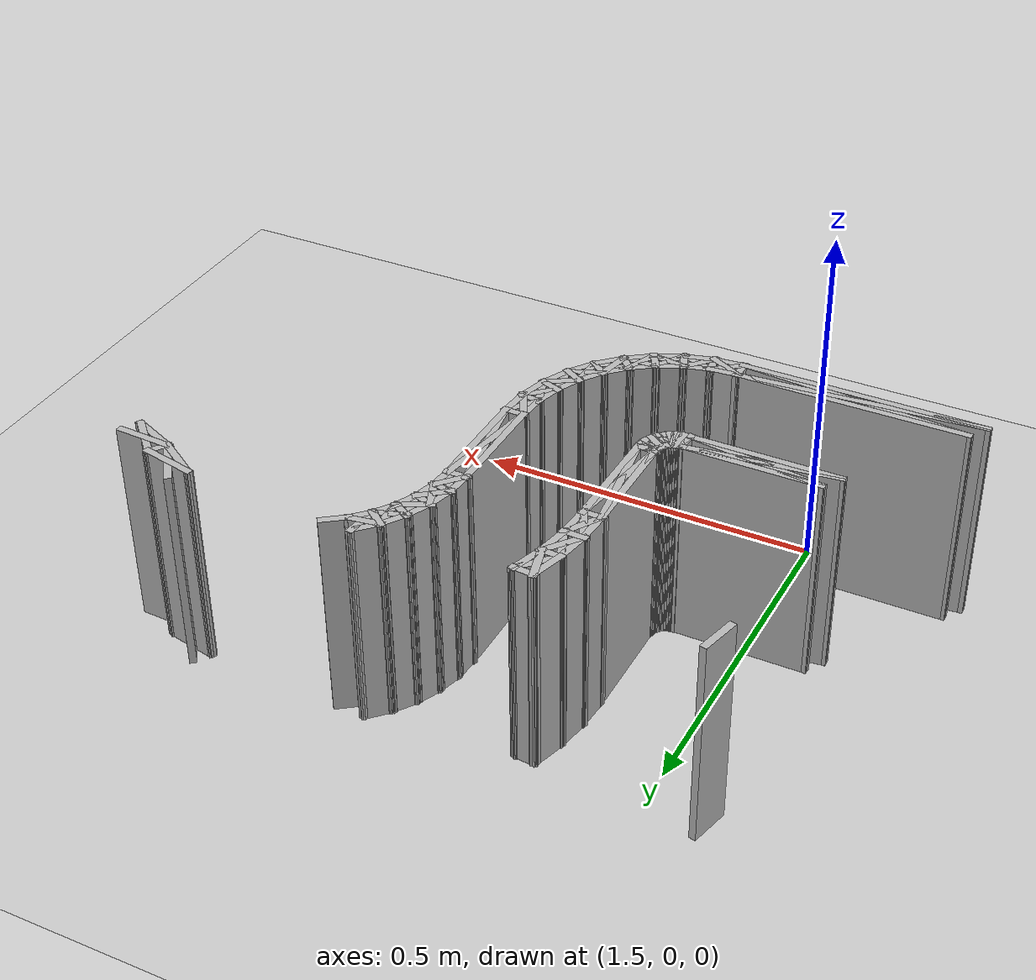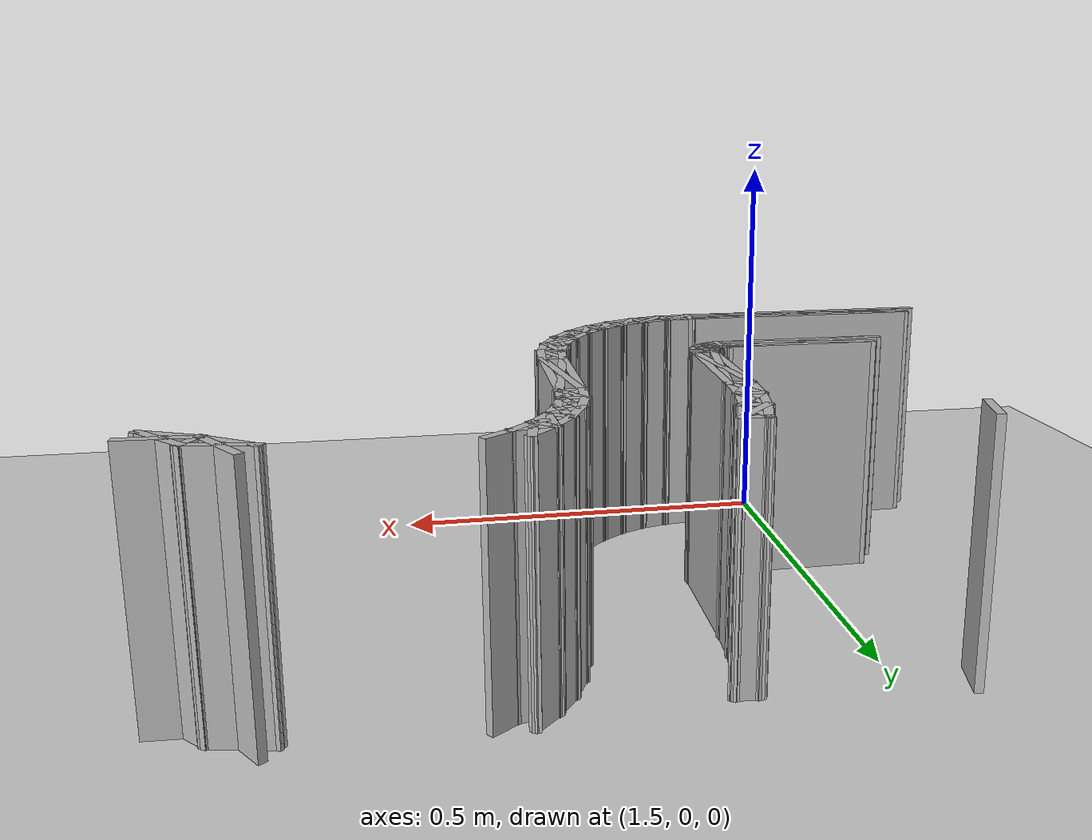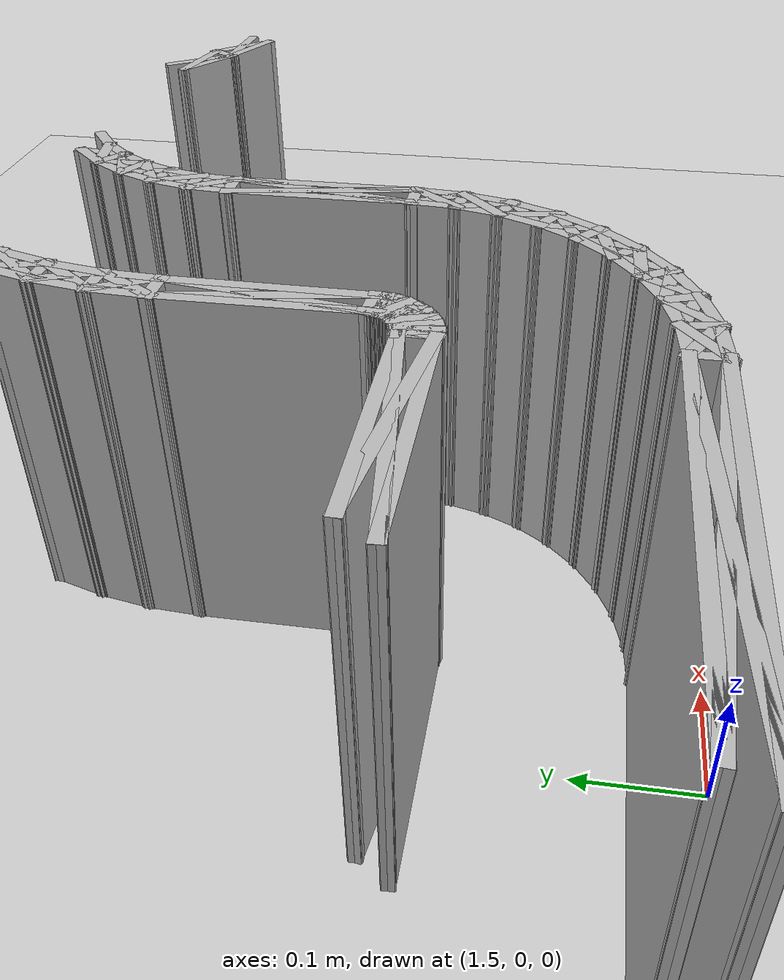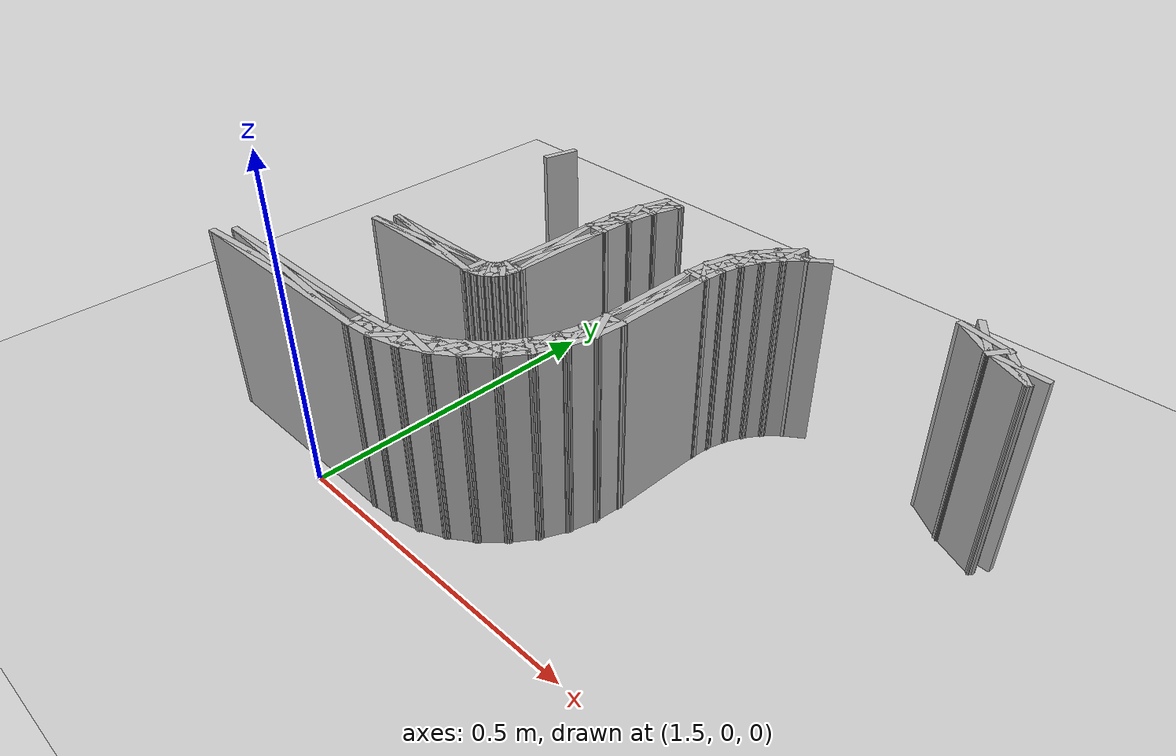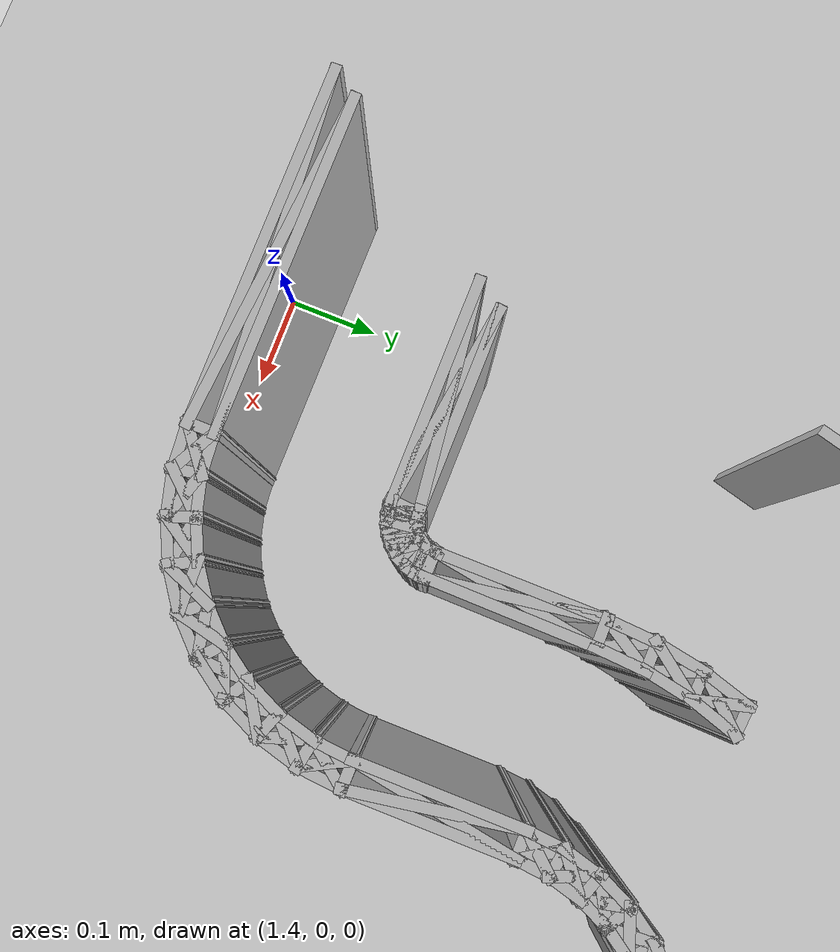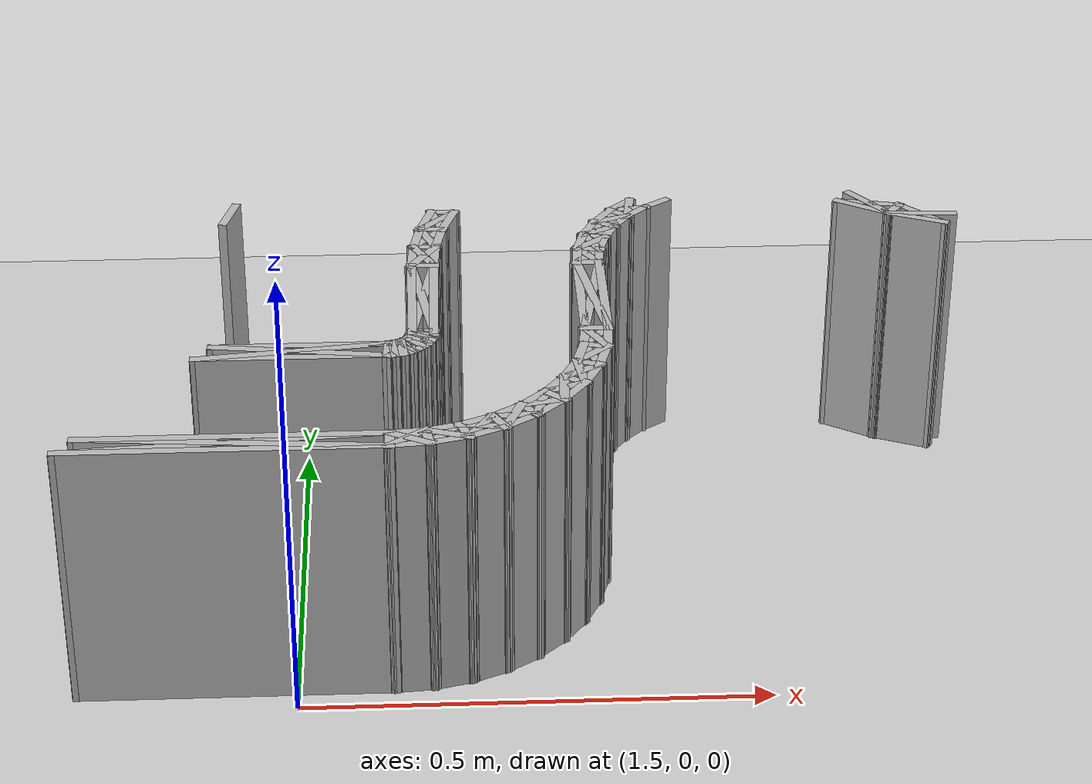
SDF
<sdf version="1.8">
 <world name="rosy_road">
  <model name="ground_plane">
   <link name="l">
    <visual name="v"><geometry><plane><normal>0 0 1</normal><size>4 2</size></plane></geometry></visual>
    <collision name="v"><geometry><plane><normal>0 0 1</normal><size>4 2</size></plane></geometry></collision>
   </link>
  </model>
  <model name="walls">
   <static>true</static>
   <link name="wall_112">
    <pose>1.4449 0.0400 0.150 0 0 -0.0789</pose>
    <visual name="v"><geometry><box><size>0.3280 0.0100 0.300</size></box></geometry></visual>
    <collision name="c"><geometry><box><size>0.3280 0.0100 0.300</size></box></geometry></collision>
   </link>
   <link name="wall_113">
    <pose>1.4362 0.0276 0.150 0 0 3.1416</pose>
    <visual name="v"><geometry><box><size>0.3444 0.0100 0.300</size></box></geometry></visual>
    <collision name="c"><geometry><box><size>0.3444 0.0100 0.300</size></box></geometry></collision>
   </link>
   <link name="wall_114">
    <pose>1.4362 0.0400 0.150 0 0 0.0748</pose>
    <visual name="v"><geometry><box><size>0.3453 0.0100 0.300</size></box></geometry></visual>
    <collision name="c"><geometry><box><size>0.3453 0.0100 0.300</size></box></geometry></collision>
   </link>
   <link name="wall_115">
    <pose>1.4449 0.0525 0.150 0 0 3.1416</pose>
    <visual name="v"><geometry><box><size>0.3270 0.0100 0.300</size></box></geometry></visual>
    <collision name="c"><geometry><box><size>0.3270 0.0100 0.300</size></box></geometry></collision>
   </link>
   <link name="wall_117">
    <pose>1.6024 0.0400 0.150 0 0 1.5708</pose>
    <visual name="v"><geometry><box><size>0.0369 0.0100 0.300</size></box></geometry></visual>
    <collision name="c"><geometry><box><size>0.0369 0.0100 0.300</size></box></geometry></collision>
   </link>
   <link name="wall_118">
    <pose>1.6207 0.0541 0.150 0 0 0.0874</pose>
    <visual name="v"><geometry><box><size>0.0486 0.0100 0.300</size></box></geometry></visual>
    <collision name="c"><geometry><box><size>0.0486 0.0100 0.300</size></box></geometry></collision>
   </link>
   <link name="wall_119">
    <pose>1.6207 0.0417 0.150 0 0 -2.4855</pose>
    <visual name="v"><geometry><box><size>0.0581 0.0100 0.300</size></box></geometry></visual>
    <collision name="c"><geometry><box><size>0.0581 0.0100 0.300</size></box></geometry></collision>
   </link>
   <link name="wall_120">
    <pose>1.6228 0.0294 0.150 0 0 0.0856</pose>
    <visual name="v"><geometry><box><size>0.0529 0.0100 0.300</size></box></geometry></visual>
    <collision name="c"><geometry><box><size>0.0529 0.0100 0.300</size></box></geometry></collision>
   </link>
   <link name="wall_121">
    <pose>1.6228 0.0418 0.150 0 0 2.6585</pose>
    <visual name="v"><geometry><box><size>0.0581 0.0100 0.300</size></box></geometry></visual>
    <collision name="c"><geometry><box><size>0.0581 0.0100 0.300</size></box></geometry></collision>
   </link>
   <link name="wall_127">
    <pose>1.6411 0.0434 0.150 0 0 -1.3977</pose>
    <visual name="v"><geometry><box><size>0.0370 0.0100 0.300</size></box></geometry></visual>
    <collision name="c"><geometry><box><size>0.0370 0.0100 0.300</size></box></geometry></collision>
   </link>
   <link name="wall_128">
    <pose>1.6587 0.0482 0.150 0 0 0.8330</pose>
    <visual name="v"><geometry><box><size>0.0581 0.0100 0.300</size></box></geometry></visual>
    <collision name="c"><geometry><box><size>0.0581 0.0100 0.300</size></box></geometry></collision>
   </link>
   <link name="wall_129">
    <pose>1.6566 0.0605 0.150 0 0 -2.8787</pose>
    <visual name="v"><geometry><box><size>0.0486 0.0100 0.300</size></box></geometry></visual>
    <collision name="c"><geometry><box><size>0.0486 0.0100 0.300</size></box></geometry></collision>
   </link>
   <link name="wall_130">
    <pose>1.6608 0.0487 0.150 0 0 -0.3087</pose>
    <visual name="v"><geometry><box><size>0.0581 0.0100 0.300</size></box></geometry></visual>
    <collision name="c"><geometry><box><size>0.0581 0.0100 0.300</size></box></geometry></collision>
   </link>
   <link name="wall_131">
    <pose>1.6630 0.0364 0.150 0 0 -2.8800</pose>
    <visual name="v"><geometry><box><size>0.0530 0.0100 0.300</size></box></geometry></visual>
    <collision name="c"><geometry><box><size>0.0530 0.0100 0.300</size></box></geometry></collision>
   </link>
   <link name="wall_137">
    <pose>1.6785 0.0535 0.150 0 0 -1.2200</pose>
    <visual name="v"><geometry><box><size>0.0370 0.0100 0.300</size></box></geometry></visual>
    <collision name="c"><geometry><box><size>0.0370 0.0100 0.300</size></box></geometry></collision>
   </link>
   <link name="wall_138">
    <pose>1.6951 0.0612 0.150 0 0 1.0081</pose>
    <visual name="v"><geometry><box><size>0.0581 0.0100 0.300</size></box></geometry></visual>
    <collision name="c"><geometry><box><size>0.0581 0.0100 0.300</size></box></geometry></collision>
   </link>
   <link name="wall_139">
    <pose>1.6908 0.0730 0.150 0 0 -2.7048</pose>
    <visual name="v"><geometry><box><size>0.0486 0.0100 0.300</size></box></geometry></visual>
    <collision name="c"><geometry><box><size>0.0486 0.0100 0.300</size></box></geometry></collision>
   </link>
   <link name="wall_140">
    <pose>1.6971 0.0621 0.150 0 0 -0.1348</pose>
    <visual name="v"><geometry><box><size>0.0581 0.0100 0.300</size></box></geometry></visual>
    <collision name="c"><geometry><box><size>0.0581 0.0100 0.300</size></box></geometry></collision>
   </link>
   <link name="wall_141">
    <pose>1.7013 0.0503 0.150 0 0 -2.7053</pose>
    <visual name="v"><geometry><box><size>0.0529 0.0100 0.300</size></box></geometry></visual>
    <collision name="c"><geometry><box><size>0.0529 0.0100 0.300</size></box></geometry></collision>
   </link>
   <link name="wall_147">
    <pose>1.7137 0.0698 0.150 0 0 -1.0482</pose>
    <visual name="v"><geometry><box><size>0.0370 0.0100 0.300</size></box></geometry></visual>
    <collision name="c"><geometry><box><size>0.0370 0.0100 0.300</size></box></geometry></collision>
   </link>
   <link name="wall_148">
    <pose>1.7287 0.0803 0.150 0 0 1.1818</pose>
    <visual name="v"><geometry><box><size>0.0581 0.0100 0.300</size></box></geometry></visual>
    <collision name="c"><geometry><box><size>0.0581 0.0100 0.300</size></box></geometry></collision>
   </link>
   <link name="wall_149">
    <pose>1.7224 0.0912 0.150 0 0 -2.5309</pose>
    <visual name="v"><geometry><box><size>0.0486 0.0100 0.300</size></box></geometry></visual>
    <collision name="c"><geometry><box><size>0.0486 0.0100 0.300</size></box></geometry></collision>
   </link>
   <link name="wall_150">
    <pose>1.7304 0.0816 0.150 0 0 0.0391</pose>
    <visual name="v"><geometry><box><size>0.0580 0.0100 0.300</size></box></geometry></visual>
    <collision name="c"><geometry><box><size>0.0580 0.0100 0.300</size></box></geometry></collision>
   </link>
   <link name="wall_151">
    <pose>1.7367 0.0707 0.150 0 0 -2.5299</pose>
    <visual name="v"><geometry><box><size>0.0529 0.0100 0.300</size></box></geometry></visual>
    <collision name="c"><geometry><box><size>0.0529 0.0100 0.300</size></box></geometry></collision>
   </link>
   <link name="wall_157">
    <pose>1.7454 0.0921 0.150 0 0 -0.8761</pose>
    <visual name="v"><geometry><box><size>0.0370 0.0100 0.300</size></box></geometry></visual>
    <collision name="c"><geometry><box><size>0.0370 0.0100 0.300</size></box></geometry></collision>
   </link>
   <link name="wall_158">
    <pose>1.7583 0.1050 0.150 0 0 1.3547</pose>
    <visual name="v"><geometry><box><size>0.0582 0.0100 0.300</size></box></geometry></visual>
    <collision name="c"><geometry><box><size>0.0582 0.0100 0.300</size></box></geometry></collision>
   </link>
   <link name="wall_159">
    <pose>1.7503 0.1147 0.150 0 0 -2.3562</pose>
    <visual name="v"><geometry><box><size>0.0486 0.0100 0.300</size></box></geometry></visual>
    <collision name="c"><geometry><box><size>0.0486 0.0100 0.300</size></box></geometry></collision>
   </link>
   <link name="wall_160">
    <pose>1.7599 0.1066 0.150 0 0 0.2144</pose>
    <visual name="v"><geometry><box><size>0.0581 0.0100 0.300</size></box></geometry></visual>
    <collision name="c"><geometry><box><size>0.0581 0.0100 0.300</size></box></geometry></collision>
   </link>
   <link name="wall_161">
    <pose>1.7679 0.0970 0.150 0 0 -2.3562</pose>
    <visual name="v"><geometry><box><size>0.0530 0.0100 0.300</size></box></geometry></visual>
    <collision name="c"><geometry><box><size>0.0530 0.0100 0.300</size></box></geometry></collision>
   </link>
   <link name="wall_167">
    <pose>1.7728 0.1196 0.150 0 0 -0.7004</pose>
    <visual name="v"><geometry><box><size>0.0370 0.0100 0.300</size></box></geometry></visual>
    <collision name="c"><geometry><box><size>0.0370 0.0100 0.300</size></box></geometry></collision>
   </link>
   <link name="wall_168">
    <pose>1.7833 0.1346 0.150 0 0 1.5296</pose>
    <visual name="v"><geometry><box><size>0.0581 0.0100 0.300</size></box></geometry></visual>
    <collision name="c"><geometry><box><size>0.0581 0.0100 0.300</size></box></geometry></collision>
   </link>
   <link name="wall_169">
    <pose>1.7738 0.1426 0.150 0 0 -2.1815</pose>
    <visual name="v"><geometry><box><size>0.0486 0.0100 0.300</size></box></geometry></visual>
    <collision name="c"><geometry><box><size>0.0486 0.0100 0.300</size></box></geometry></collision>
   </link>
   <link name="wall_170">
    <pose>1.7846 0.1363 0.150 0 0 0.3878</pose>
    <visual name="v"><geometry><box><size>0.0580 0.0100 0.300</size></box></geometry></visual>
    <collision name="c"><geometry><box><size>0.0580 0.0100 0.300</size></box></geometry></collision>
   </link>
   <link name="wall_171">
    <pose>1.7942 0.1283 0.150 0 0 -2.1825</pose>
    <visual name="v"><geometry><box><size>0.0529 0.0100 0.300</size></box></geometry></visual>
    <collision name="c"><geometry><box><size>0.0529 0.0100 0.300</size></box></geometry></collision>
   </link>
   <link name="wall_187">
    <pose>1.7920 0.1741 0.150 0 0 1.1353</pose>
    <visual name="v"><geometry><box><size>0.0485 0.0100 0.300</size></box></geometry></visual>
    <collision name="c"><geometry><box><size>0.0485 0.0100 0.300</size></box></geometry></collision>
   </link>
   <link name="wall_188">
    <pose>1.8028 0.1678 0.150 0 0 -1.4360</pose>
    <visual name="v"><geometry><box><size>0.0581 0.0100 0.300</size></box></geometry></visual>
    <collision name="c"><geometry><box><size>0.0581 0.0100 0.300</size></box></geometry></collision>
   </link>
   <link name="wall_189">
    <pose>1.7951 0.1513 0.150 0 0 2.6135</pose>
    <visual name="v"><geometry><box><size>0.0370 0.0100 0.300</size></box></geometry></visual>
    <collision name="c"><geometry><box><size>0.0370 0.0100 0.300</size></box></geometry></collision>
   </link>
   <link name="wall_190">
    <pose>1.8037 0.1699 0.150 0 0 0.5639</pose>
    <visual name="v"><geometry><box><size>0.0580 0.0100 0.300</size></box></geometry></visual>
    <collision name="c"><geometry><box><size>0.0580 0.0100 0.300</size></box></geometry></collision>
   </link>
   <link name="wall_191">
    <pose>1.8146 0.1636 0.150 0 0 -2.0061</pose>
    <visual name="v"><geometry><box><size>0.0530 0.0100 0.300</size></box></geometry></visual>
    <collision name="c"><geometry><box><size>0.0530 0.0100 0.300</size></box></geometry></collision>
   </link>
   <link name="wall_192">
    <pose>1.8045 0.2084 0.150 0 0 1.3086</pose>
    <visual name="v"><geometry><box><size>0.0487 0.0100 0.300</size></box></geometry></visual>
    <collision name="c"><geometry><box><size>0.0487 0.0100 0.300</size></box></geometry></collision>
   </link>
   <link name="wall_193">
    <pose>1.8162 0.2041 0.150 0 0 -1.2621</pose>
    <visual name="v"><geometry><box><size>0.0581 0.0100 0.300</size></box></geometry></visual>
    <collision name="c"><geometry><box><size>0.0581 0.0100 0.300</size></box></geometry></collision>
   </link>
   <link name="wall_194">
    <pose>1.8115 0.1864 0.150 0 0 2.7945</pose>
    <visual name="v"><geometry><box><size>0.0370 0.0100 0.300</size></box></geometry></visual>
    <collision name="c"><geometry><box><size>0.0370 0.0100 0.300</size></box></geometry></collision>
   </link>
   <link name="wall_195">
    <pose>1.8168 0.2062 0.150 0 0 0.7378</pose>
    <visual name="v"><geometry><box><size>0.0581 0.0100 0.300</size></box></geometry></visual>
    <collision name="c"><geometry><box><size>0.0581 0.0100 0.300</size></box></geometry></collision>
   </link>
   <link name="wall_196">
    <pose>1.8285 0.2019 0.150 0 0 -1.8330</pose>
    <visual name="v"><geometry><box><size>0.0529 0.0100 0.300</size></box></geometry></visual>
    <collision name="c"><geometry><box><size>0.0529 0.0100 0.300</size></box></geometry></collision>
   </link>
   <link name="wall_216">
    <pose>1.8108 0.2443 0.150 0 0 1.4831</pose>
    <visual name="v"><geometry><box><size>0.0485 0.0100 0.300</size></box></geometry></visual>
    <collision name="c"><geometry><box><size>0.0485 0.0100 0.300</size></box></geometry></collision>
   </link>
   <link name="wall_217">
    <pose>1.8231 0.2421 0.150 0 0 -1.0877</pose>
    <visual name="v"><geometry><box><size>0.0581 0.0100 0.300</size></box></geometry></visual>
    <collision name="c"><geometry><box><size>0.0581 0.0100 0.300</size></box></geometry></collision>
   </link>
   <link name="wall_218">
    <pose>1.8215 0.2239 0.150 0 0 2.9646</pose>
    <visual name="v"><geometry><box><size>0.0370 0.0100 0.300</size></box></geometry></visual>
    <collision name="c"><geometry><box><size>0.0370 0.0100 0.300</size></box></geometry></collision>
   </link>
   <link name="wall_219">
    <pose>1.8233 0.2443 0.150 0 0 0.9117</pose>
    <visual name="v"><geometry><box><size>0.0580 0.0100 0.300</size></box></geometry></visual>
    <collision name="c"><geometry><box><size>0.0580 0.0100 0.300</size></box></geometry></collision>
   </link>
   <link name="wall_220">
    <pose>1.8356 0.2421 0.150 0 0 -1.6588</pose>
    <visual name="v"><geometry><box><size>0.0530 0.0100 0.300</size></box></geometry></visual>
    <collision name="c"><geometry><box><size>0.0530 0.0100 0.300</size></box></geometry></collision>
   </link>
   <link name="wall_221">
    <pose>1.8124 0.3392 0.150 0 0 1.5708</pose>
    <visual name="v"><geometry><box><size>0.1654 0.0100 0.300</size></box></geometry></visual>
    <collision name="c"><geometry><box><size>0.1654 0.0100 0.300</size></box></geometry></collision>
   </link>
   <link name="wall_222">
    <pose>1.8249 0.3392 0.150 0 0 -1.4092</pose>
    <visual name="v"><geometry><box><size>0.1674 0.0100 0.300</size></box></geometry></visual>
    <collision name="c"><geometry><box><size>0.1674 0.0100 0.300</size></box></geometry></collision>
   </link>
   <link name="wall_223">
    <pose>1.8249 0.2625 0.150 0 0 3.1416</pose>
    <visual name="v"><geometry><box><size>0.0370 0.0100 0.300</size></box></geometry></visual>
    <collision name="c"><geometry><box><size>0.0370 0.0100 0.300</size></box></geometry></collision>
   </link>
   <link name="wall_224">
    <pose>1.8249 0.3392 0.150 0 0 1.4092</pose>
    <visual name="v"><geometry><box><size>0.1674 0.0100 0.300</size></box></geometry></visual>
    <collision name="c"><geometry><box><size>0.1674 0.0100 0.300</size></box></geometry></collision>
   </link>
   <link name="wall_225">
    <pose>1.8374 0.3392 0.150 0 0 -1.5708</pose>
    <visual name="v"><geometry><box><size>0.1654 0.0100 0.300</size></box></geometry></visual>
    <collision name="c"><geometry><box><size>0.1654 0.0100 0.300</size></box></geometry></collision>
   </link>
   <link name="wall_239">
    <pose>1.8139 0.4334 0.150 0 0 1.4850</pose>
    <visual name="v"><geometry><box><size>0.0470 0.0100 0.300</size></box></geometry></visual>
    <collision name="c"><geometry><box><size>0.0470 0.0100 0.300</size></box></geometry></collision>
   </link>
   <link name="wall_240">
    <pose>1.8264 0.4334 0.150 0 0 -1.0083</pose>
    <visual name="v"><geometry><box><size>0.0533 0.0100 0.300</size></box></geometry></visual>
    <collision name="c"><geometry><box><size>0.0533 0.0100 0.300</size></box></geometry></collision>
   </link>
   <link name="wall_241">
    <pose>1.8249 0.4159 0.150 0 0 3.1416</pose>
    <visual name="v"><geometry><box><size>0.0370 0.0100 0.300</size></box></geometry></visual>
    <collision name="c"><geometry><box><size>0.0370 0.0100 0.300</size></box></geometry></collision>
   </link>
   <link name="wall_242">
    <pose>1.8262 0.4312 0.150 0 0 0.8369</pose>
    <visual name="v"><geometry><box><size>0.0532 0.0100 0.300</size></box></geometry></visual>
    <collision name="c"><geometry><box><size>0.0532 0.0100 0.300</size></box></geometry></collision>
   </link>
   <link name="wall_243">
    <pose>1.8387 0.4312 0.150 0 0 -1.6556</pose>
    <visual name="v"><geometry><box><size>0.0427 0.0100 0.300</size></box></geometry></visual>
    <collision name="c"><geometry><box><size>0.0427 0.0100 0.300</size></box></geometry></collision>
   </link>
   <link name="wall_244">
    <pose>1.8198 0.4677 0.150 0 0 1.3141</pose>
    <visual name="v"><geometry><box><size>0.0470 0.0100 0.300</size></box></geometry></visual>
    <collision name="c"><geometry><box><size>0.0470 0.0100 0.300</size></box></geometry></collision>
   </link>
   <link name="wall_245">
    <pose>1.8322 0.4656 0.150 0 0 -1.1808</pose>
    <visual name="v"><geometry><box><size>0.0533 0.0100 0.300</size></box></geometry></visual>
    <collision name="c"><geometry><box><size>0.0533 0.0100 0.300</size></box></geometry></collision>
   </link>
   <link name="wall_246">
    <pose>1.8277 0.4486 0.150 0 0 2.9685</pose>
    <visual name="v"><geometry><box><size>0.0370 0.0100 0.300</size></box></geometry></visual>
    <collision name="c"><geometry><box><size>0.0370 0.0100 0.300</size></box></geometry></collision>
   </link>
   <link name="wall_247">
    <pose>1.8316 0.4636 0.150 0 0 0.6668</pose>
    <visual name="v"><geometry><box><size>0.0532 0.0100 0.300</size></box></geometry></visual>
    <collision name="c"><geometry><box><size>0.0532 0.0100 0.300</size></box></geometry></collision>
   </link>
   <link name="wall_248">
    <pose>1.8439 0.4614 0.150 0 0 -1.8268</pose>
    <visual name="v"><geometry><box><size>0.0428 0.0100 0.300</size></box></geometry></visual>
    <collision name="c"><geometry><box><size>0.0428 0.0100 0.300</size></box></geometry></collision>
   </link>
   <link name="wall_264">
    <pose>1.8316 0.5006 0.150 0 0 1.1416</pose>
    <visual name="v"><geometry><box><size>0.0471 0.0100 0.300</size></box></geometry></visual>
    <collision name="c"><geometry><box><size>0.0471 0.0100 0.300</size></box></geometry></collision>
   </link>
   <link name="wall_265">
    <pose>1.8433 0.4965 0.150 0 0 -1.3534</pose>
    <visual name="v"><geometry><box><size>0.0533 0.0100 0.300</size></box></geometry></visual>
    <collision name="c"><geometry><box><size>0.0533 0.0100 0.300</size></box></geometry></collision>
   </link>
   <link name="wall_266">
    <pose>1.8360 0.4805 0.150 0 0 2.7983</pose>
    <visual name="v"><geometry><box><size>0.0370 0.0100 0.300</size></box></geometry></visual>
    <collision name="c"><geometry><box><size>0.0370 0.0100 0.300</size></box></geometry></collision>
   </link>
   <link name="wall_267">
    <pose>1.8424 0.4945 0.150 0 0 0.4951</pose>
    <visual name="v"><geometry><box><size>0.0533 0.0100 0.300</size></box></geometry></visual>
    <collision name="c"><geometry><box><size>0.0533 0.0100 0.300</size></box></geometry></collision>
   </link>
   <link name="wall_268">
    <pose>1.8542 0.4903 0.150 0 0 -1.9996</pose>
    <visual name="v"><geometry><box><size>0.0428 0.0100 0.300</size></box></geometry></visual>
    <collision name="c"><geometry><box><size>0.0428 0.0100 0.300</size></box></geometry></collision>
   </link>
   <link name="wall_269">
    <pose>1.8488 0.5311 0.150 0 0 0.9717</pose>
    <visual name="v"><geometry><box><size>0.0471 0.0100 0.300</size></box></geometry></visual>
    <collision name="c"><geometry><box><size>0.0471 0.0100 0.300</size></box></geometry></collision>
   </link>
   <link name="wall_270">
    <pose>1.8597 0.5250 0.150 0 0 -1.5248</pose>
    <visual name="v"><geometry><box><size>0.0533 0.0100 0.300</size></box></geometry></visual>
    <collision name="c"><geometry><box><size>0.0533 0.0100 0.300</size></box></geometry></collision>
   </link>
   <link name="wall_271">
    <pose>1.8498 0.5105 0.150 0 0 2.6259</pose>
    <visual name="v"><geometry><box><size>0.0369 0.0100 0.300</size></box></geometry></visual>
    <collision name="c"><geometry><box><size>0.0369 0.0100 0.300</size></box></geometry></collision>
   </link>
   <link name="wall_272">
    <pose>1.8584 0.5232 0.150 0 0 0.3256</pose>
    <visual name="v"><geometry><box><size>0.0533 0.0100 0.300</size></box></geometry></visual>
    <collision name="c"><geometry><box><size>0.0533 0.0100 0.300</size></box></geometry></collision>
   </link>
   <link name="wall_273">
    <pose>1.8693 0.5171 0.150 0 0 -2.1696</pose>
    <visual name="v"><geometry><box><size>0.0429 0.0100 0.300</size></box></geometry></visual>
    <collision name="c"><geometry><box><size>0.0429 0.0100 0.300</size></box></geometry></collision>
   </link>
   <link name="wall_285">
    <pose>1.8683 0.5377 0.150 0 0 -0.6860</pose>
    <visual name="v"><geometry><box><size>0.0369 0.0100 0.300</size></box></geometry></visual>
    <collision name="c"><geometry><box><size>0.0369 0.0100 0.300</size></box></geometry></collision>
   </link>
   <link name="wall_286">
    <pose>1.8805 0.5503 0.150 0 0 1.4467</pose>
    <visual name="v"><geometry><box><size>0.0532 0.0100 0.300</size></box></geometry></visual>
    <collision name="c"><geometry><box><size>0.0532 0.0100 0.300</size></box></geometry></collision>
   </link>
   <link name="wall_287">
    <pose>1.8709 0.5582 0.150 0 0 -2.3421</pose>
    <visual name="v"><geometry><box><size>0.0470 0.0100 0.300</size></box></geometry></visual>
    <collision name="c"><geometry><box><size>0.0470 0.0100 0.300</size></box></geometry></collision>
   </link>
   <link name="wall_288">
    <pose>1.8791 0.5487 0.150 0 0 0.1508</pose>
    <visual name="v"><geometry><box><size>0.0533 0.0100 0.300</size></box></geometry></visual>
    <collision name="c"><geometry><box><size>0.0533 0.0100 0.300</size></box></geometry></collision>
   </link>
   <link name="wall_289">
    <pose>1.8887 0.5408 0.150 0 0 -2.3447</pose>
    <visual name="v"><geometry><box><size>0.0428 0.0100 0.300</size></box></geometry></visual>
    <collision name="c"><geometry><box><size>0.0428 0.0100 0.300</size></box></geometry></collision>
   </link>
   <link name="wall_302">
    <pose>1.9120 0.5609 0.150 0 0 -2.5104</pose>
    <visual name="v"><geometry><box><size>0.0428 0.0100 0.300</size></box></geometry></visual>
    <collision name="c"><geometry><box><size>0.0428 0.0100 0.300</size></box></geometry></collision>
   </link>
   <link name="wall_366">
    <pose>2.2173 0.5218 0.150 0 0 3.0918</pose>
    <visual name="v"><geometry><box><size>0.0843 0.0100 0.300</size></box></geometry></visual>
    <collision name="c"><geometry><box><size>0.0843 0.0100 0.300</size></box></geometry></collision>
   </link>
   <link name="wall_367">
    <pose>2.2107 0.5109 0.150 0 0 -0.4080</pose>
    <visual name="v"><geometry><box><size>0.0763 0.0100 0.300</size></box></geometry></visual>
    <collision name="c"><geometry><box><size>0.0763 0.0100 0.300</size></box></geometry></collision>
   </link>
   <link name="wall_368">
    <pose>2.2178 0.5212 0.150 0 0 2.3397</pose>
    <visual name="v"><geometry><box><size>0.0764 0.0100 0.300</size></box></geometry></visual>
    <collision name="c"><geometry><box><size>0.0764 0.0100 0.300</size></box></geometry></collision>
   </link>
   <link name="wall_376">
    <pose>2.1613 0.5514 0.150 0 0 2.9377</pose>
    <visual name="v"><geometry><box><size>0.0816 0.0100 0.300</size></box></geometry></visual>
    <collision name="c"><geometry><box><size>0.0816 0.0100 0.300</size></box></geometry></collision>
   </link>
   <link name="wall_377">
    <pose>2.1542 0.5410 0.150 0 0 -0.5738</pose>
    <visual name="v"><geometry><box><size>0.0763 0.0100 0.300</size></box></geometry></visual>
    <collision name="c"><geometry><box><size>0.0763 0.0100 0.300</size></box></geometry></collision>
   </link>
   <link name="wall_378">
    <pose>2.1618 0.5510 0.150 0 0 2.1878</pose>
    <visual name="v"><geometry><box><size>0.0791 0.0100 0.300</size></box></geometry></visual>
    <collision name="c"><geometry><box><size>0.0791 0.0100 0.300</size></box></geometry></collision>
   </link>
   <link name="wall_380">
    <pose>2.1883 0.5340 0.150 0 0 -2.1698</pose>
    <visual name="v"><geometry><box><size>0.0372 0.0100 0.300</size></box></geometry></visual>
    <collision name="c"><geometry><box><size>0.0372 0.0100 0.300</size></box></geometry></collision>
   </link>
   <link name="wall_709">
    <pose>1.5083 0.2251 0.150 0 0 -0.1352</pose>
    <visual name="v"><geometry><box><size>0.1982 0.0100 0.300</size></box></geometry></visual>
    <collision name="c"><geometry><box><size>0.1982 0.0100 0.300</size></box></geometry></collision>
   </link>
   <link name="wall_710">
    <pose>1.4997 0.2125 0.150 0 0 3.1416</pose>
    <visual name="v"><geometry><box><size>0.2139 0.0100 0.300</size></box></geometry></visual>
    <collision name="c"><geometry><box><size>0.2139 0.0100 0.300</size></box></geometry></collision>
   </link>
   <link name="wall_711">
    <pose>1.5006 0.2251 0.150 0 0 0.1226</pose>
    <visual name="v"><geometry><box><size>0.2172 0.0100 0.300</size></box></geometry></visual>
    <collision name="c"><geometry><box><size>0.2172 0.0100 0.300</size></box></geometry></collision>
   </link>
   <link name="wall_712">
    <pose>1.5092 0.2376 0.150 0 0 3.1416</pose>
    <visual name="v"><geometry><box><size>0.1983 0.0100 0.300</size></box></geometry></visual>
    <collision name="c"><geometry><box><size>0.1983 0.0100 0.300</size></box></geometry></collision>
   </link>
   <link name="wall_719">
    <pose>1.6015 0.2251 0.150 0 0 1.4992</pose>
    <visual name="v"><geometry><box><size>0.0372 0.0100 0.300</size></box></geometry></visual>
    <collision name="c"><geometry><box><size>0.0372 0.0100 0.300</size></box></geometry></collision>
   </link>
   <link name="wall_720">
    <pose>1.6046 0.2377 0.150 0 0 0.0697</pose>
    <visual name="v"><geometry><box><size>0.0200 0.0100 0.300</size></box></geometry></visual>
    <collision name="c"><geometry><box><size>0.0200 0.0100 0.300</size></box></geometry></collision>
   </link>
   <link name="wall_721">
    <pose>1.6037 0.2252 0.150 0 0 -1.8065</pose>
    <visual name="v"><geometry><box><size>0.0381 0.0100 0.300</size></box></geometry></visual>
    <collision name="c"><geometry><box><size>0.0381 0.0100 0.300</size></box></geometry></collision>
   </link>
   <link name="wall_722">
    <pose>1.6049 0.2129 0.150 0 0 0.0928</pose>
    <visual name="v"><geometry><box><size>0.0206 0.0100 0.300</size></box></geometry></visual>
    <collision name="c"><geometry><box><size>0.0206 0.0100 0.300</size></box></geometry></collision>
   </link>
   <link name="wall_723">
    <pose>1.6058 0.2254 0.150 0 0 1.8437</pose>
    <visual name="v"><geometry><box><size>0.0372 0.0100 0.300</size></box></geometry></visual>
    <collision name="c"><geometry><box><size>0.0372 0.0100 0.300</size></box></geometry></collision>
   </link>
   <link name="wall_728">
    <pose>1.4184 0.5545 0.150 0 0 -1.8201</pose>
    <visual name="v"><geometry><box><size>0.0566 0.0100 0.300</size></box></geometry></visual>
    <collision name="c"><geometry><box><size>0.0566 0.0100 0.300</size></box></geometry></collision>
   </link>
   <link name="wall_729">
    <pose>1.6079 0.2256 0.150 0 0 -1.4695</pose>
    <visual name="v"><geometry><box><size>0.0367 0.0100 0.300</size></box></geometry></visual>
    <collision name="c"><geometry><box><size>0.0367 0.0100 0.300</size></box></geometry></collision>
   </link>
   <link name="wall_730">
    <pose>1.6101 0.2262 0.150 0 0 1.5050</pose>
    <visual name="v"><geometry><box><size>0.0379 0.0100 0.300</size></box></geometry></visual>
    <collision name="c"><geometry><box><size>0.0379 0.0100 0.300</size></box></geometry></collision>
   </link>
   <link name="wall_731">
    <pose>1.6088 0.2385 0.150 0 0 -2.8633</pose>
    <visual name="v"><geometry><box><size>0.0200 0.0100 0.300</size></box></geometry></visual>
    <collision name="c"><geometry><box><size>0.0200 0.0100 0.300</size></box></geometry></collision>
   </link>
   <link name="wall_732">
    <pose>1.6122 0.2267 0.150 0 0 -1.1179</pose>
    <visual name="v"><geometry><box><size>0.0369 0.0100 0.300</size></box></geometry></visual>
    <collision name="c"><geometry><box><size>0.0369 0.0100 0.300</size></box></geometry></collision>
   </link>
   <link name="wall_733">
    <pose>1.6134 0.2144 0.150 0 0 -2.8854</pose>
    <visual name="v"><geometry><box><size>0.0207 0.0100 0.300</size></box></geometry></visual>
    <collision name="c"><geometry><box><size>0.0207 0.0100 0.300</size></box></geometry></collision>
   </link>
   <link name="wall_739">
    <pose>1.6129 0.2400 0.150 0 0 0.4229</pose>
    <visual name="v"><geometry><box><size>0.0200 0.0100 0.300</size></box></geometry></visual>
    <collision name="c"><geometry><box><size>0.0200 0.0100 0.300</size></box></geometry></collision>
   </link>
   <link name="wall_740">
    <pose>1.6162 0.2282 0.150 0 0 -1.4649</pose>
    <visual name="v"><geometry><box><size>0.0375 0.0100 0.300</size></box></geometry></visual>
    <collision name="c"><geometry><box><size>0.0375 0.0100 0.300</size></box></geometry></collision>
   </link>
   <link name="wall_741">
    <pose>1.6142 0.2273 0.150 0 0 1.8474</pose>
    <visual name="v"><geometry><box><size>0.0365 0.0100 0.300</size></box></geometry></visual>
    <collision name="c"><geometry><box><size>0.0365 0.0100 0.300</size></box></geometry></collision>
   </link>
   <link name="wall_742">
    <pose>1.6182 0.2291 0.150 0 0 -0.9378</pose>
    <visual name="v"><geometry><box><size>0.0367 0.0100 0.300</size></box></geometry></visual>
    <collision name="c"><geometry><box><size>0.0367 0.0100 0.300</size></box></geometry></collision>
   </link>
   <link name="wall_743">
    <pose>1.6216 0.2173 0.150 0 0 -2.7036</pose>
    <visual name="v"><geometry><box><size>0.0207 0.0100 0.300</size></box></geometry></visual>
    <collision name="c"><geometry><box><size>0.0207 0.0100 0.300</size></box></geometry></collision>
   </link>
   <link name="wall_749">
    <pose>1.6167 0.2422 0.150 0 0 0.6070</pose>
    <visual name="v"><geometry><box><size>0.0200 0.0100 0.300</size></box></geometry></visual>
    <collision name="c"><geometry><box><size>0.0200 0.0100 0.300</size></box></geometry></collision>
   </link>
   <link name="wall_750">
    <pose>1.6220 0.2313 0.150 0 0 -1.2892</pose>
    <visual name="v"><geometry><box><size>0.0372 0.0100 0.300</size></box></geometry></visual>
    <collision name="c"><geometry><box><size>0.0372 0.0100 0.300</size></box></geometry></collision>
   </link>
   <link name="wall_751">
    <pose>1.6202 0.2301 0.150 0 0 2.0252</pose>
    <visual name="v"><geometry><box><size>0.0362 0.0100 0.300</size></box></geometry></visual>
    <collision name="c"><geometry><box><size>0.0362 0.0100 0.300</size></box></geometry></collision>
   </link>
   <link name="wall_752">
    <pose>1.6238 0.2325 0.150 0 0 -0.7593</pose>
    <visual name="v"><geometry><box><size>0.0364 0.0100 0.300</size></box></geometry></visual>
    <collision name="c"><geometry><box><size>0.0364 0.0100 0.300</size></box></geometry></collision>
   </link>
   <link name="wall_753">
    <pose>1.6290 0.2216 0.150 0 0 -2.5375</pose>
    <visual name="v"><geometry><box><size>0.0206 0.0100 0.300</size></box></geometry></visual>
    <collision name="c"><geometry><box><size>0.0206 0.0100 0.300</size></box></geometry></collision>
   </link>
   <link name="wall_759">
    <pose>1.6200 0.2450 0.150 0 0 0.8018</pose>
    <visual name="v"><geometry><box><size>0.0200 0.0100 0.300</size></box></geometry></visual>
    <collision name="c"><geometry><box><size>0.0200 0.0100 0.300</size></box></geometry></collision>
   </link>
   <link name="wall_760">
    <pose>1.6270 0.2353 0.150 0 0 -1.1107</pose>
    <visual name="v"><geometry><box><size>0.0370 0.0100 0.300</size></box></geometry></visual>
    <collision name="c"><geometry><box><size>0.0370 0.0100 0.300</size></box></geometry></collision>
   </link>
   <link name="wall_761">
    <pose>1.6256 0.2338 0.150 0 0 2.2017</pose>
    <visual name="v"><geometry><box><size>0.0359 0.0100 0.300</size></box></geometry></visual>
    <collision name="c"><geometry><box><size>0.0359 0.0100 0.300</size></box></geometry></collision>
   </link>
   <link name="wall_762">
    <pose>1.6286 0.2368 0.150 0 0 -0.5788</pose>
    <visual name="v"><geometry><box><size>0.0361 0.0100 0.300</size></box></geometry></visual>
    <collision name="c"><geometry><box><size>0.0361 0.0100 0.300</size></box></geometry></collision>
   </link>
   <link name="wall_763">
    <pose>1.6357 0.2271 0.150 0 0 -2.3562</pose>
    <visual name="v"><geometry><box><size>0.0206 0.0100 0.300</size></box></geometry></visual>
    <collision name="c"><geometry><box><size>0.0206 0.0100 0.300</size></box></geometry></collision>
   </link>
   <link name="wall_769">
    <pose>1.6227 0.2483 0.150 0 0 0.9638</pose>
    <visual name="v"><geometry><box><size>0.0200 0.0100 0.300</size></box></geometry></visual>
    <collision name="c"><geometry><box><size>0.0200 0.0100 0.300</size></box></geometry></collision>
   </link>
   <link name="wall_770">
    <pose>1.6313 0.2401 0.150 0 0 -0.9346</pose>
    <visual name="v"><geometry><box><size>0.0367 0.0100 0.300</size></box></geometry></visual>
    <collision name="c"><geometry><box><size>0.0367 0.0100 0.300</size></box></geometry></collision>
   </link>
   <link name="wall_771">
    <pose>1.6301 0.2384 0.150 0 0 2.3831</pose>
    <visual name="v"><geometry><box><size>0.0357 0.0100 0.300</size></box></geometry></visual>
    <collision name="c"><geometry><box><size>0.0357 0.0100 0.300</size></box></geometry></collision>
   </link>
   <link name="wall_772">
    <pose>1.6326 0.2418 0.150 0 0 -0.3967</pose>
    <visual name="v"><geometry><box><size>0.0361 0.0100 0.300</size></box></geometry></visual>
    <collision name="c"><geometry><box><size>0.0361 0.0100 0.300</size></box></geometry></collision>
   </link>
   <link name="wall_773">
    <pose>1.6412 0.2337 0.150 0 0 -2.1910</pose>
    <visual name="v"><geometry><box><size>0.0206 0.0100 0.300</size></box></geometry></visual>
    <collision name="c"><geometry><box><size>0.0206 0.0100 0.300</size></box></geometry></collision>
   </link>
   <link name="wall_779">
    <pose>1.6250 0.2520 0.150 0 0 1.1175</pose>
    <visual name="v"><geometry><box><size>0.0200 0.0100 0.300</size></box></geometry></visual>
    <collision name="c"><geometry><box><size>0.0200 0.0100 0.300</size></box></geometry></collision>
   </link>
   <link name="wall_780">
    <pose>1.6348 0.2456 0.150 0 0 -0.7565</pose>
    <visual name="v"><geometry><box><size>0.0365 0.0100 0.300</size></box></geometry></visual>
    <collision name="c"><geometry><box><size>0.0365 0.0100 0.300</size></box></geometry></collision>
   </link>
   <link name="wall_781">
    <pose>1.6338 0.2436 0.150 0 0 2.5618</pose>
    <visual name="v"><geometry><box><size>0.0355 0.0100 0.300</size></box></geometry></visual>
    <collision name="c"><geometry><box><size>0.0355 0.0100 0.300</size></box></geometry></collision>
   </link>
   <link name="wall_782">
    <pose>1.6358 0.2476 0.150 0 0 -0.2137</pose>
    <visual name="v"><geometry><box><size>0.0360 0.0100 0.300</size></box></geometry></visual>
    <collision name="c"><geometry><box><size>0.0360 0.0100 0.300</size></box></geometry></collision>
   </link>
   <link name="wall_783">
    <pose>1.6456 0.2411 0.150 0 0 -2.0241</pose>
    <visual name="v"><geometry><box><size>0.0207 0.0100 0.300</size></box></geometry></visual>
    <collision name="c"><geometry><box><size>0.0207 0.0100 0.300</size></box></geometry></collision>
   </link>
   <link name="wall_789">
    <pose>1.6264 0.2561 0.150 0 0 1.3146</pose>
    <visual name="v"><geometry><box><size>0.0200 0.0100 0.300</size></box></geometry></visual>
    <collision name="c"><geometry><box><size>0.0200 0.0100 0.300</size></box></geometry></collision>
   </link>
   <link name="wall_790">
    <pose>1.6373 0.2516 0.150 0 0 -0.5721</pose>
    <visual name="v"><geometry><box><size>0.0364 0.0100 0.300</size></box></geometry></visual>
    <collision name="c"><geometry><box><size>0.0364 0.0100 0.300</size></box></geometry></collision>
   </link>
   <link name="wall_791">
    <pose>1.6367 0.2495 0.150 0 0 2.7468</pose>
    <visual name="v"><geometry><box><size>0.0354 0.0100 0.300</size></box></geometry></visual>
    <collision name="c"><geometry><box><size>0.0354 0.0100 0.300</size></box></geometry></collision>
   </link>
   <link name="wall_792">
    <pose>1.6378 0.2537 0.150 0 0 -0.0251</pose>
    <visual name="v"><geometry><box><size>0.0359 0.0100 0.300</size></box></geometry></visual>
    <collision name="c"><geometry><box><size>0.0359 0.0100 0.300</size></box></geometry></collision>
   </link>
   <link name="wall_793">
    <pose>1.6487 0.2492 0.150 0 0 -1.8381</pose>
    <visual name="v"><geometry><box><size>0.0207 0.0100 0.300</size></box></geometry></visual>
    <collision name="c"><geometry><box><size>0.0207 0.0100 0.300</size></box></geometry></collision>
   </link>
   <link name="wall_799">
    <pose>1.6272 0.2604 0.150 0 0 1.4780</pose>
    <visual name="v"><geometry><box><size>0.0200 0.0100 0.300</size></box></geometry></visual>
    <collision name="c"><geometry><box><size>0.0200 0.0100 0.300</size></box></geometry></collision>
   </link>
   <link name="wall_800">
    <pose>1.6386 0.2580 0.150 0 0 -0.3859</pose>
    <visual name="v"><geometry><box><size>0.0362 0.0100 0.300</size></box></geometry></visual>
    <collision name="c"><geometry><box><size>0.0362 0.0100 0.300</size></box></geometry></collision>
   </link>
   <link name="wall_801">
    <pose>1.6384 0.2558 0.150 0 0 2.9341</pose>
    <visual name="v"><geometry><box><size>0.0353 0.0100 0.300</size></box></geometry></visual>
    <collision name="c"><geometry><box><size>0.0353 0.0100 0.300</size></box></geometry></collision>
   </link>
   <link name="wall_802">
    <pose>1.6388 0.2601 0.150 0 0 0.1596</pose>
    <visual name="v"><geometry><box><size>0.0359 0.0100 0.300</size></box></geometry></visual>
    <collision name="c"><geometry><box><size>0.0359 0.0100 0.300</size></box></geometry></collision>
   </link>
   <link name="wall_803">
    <pose>1.6502 0.2577 0.150 0 0 -1.6636</pose>
    <visual name="v"><geometry><box><size>0.0206 0.0100 0.300</size></box></geometry></visual>
    <collision name="c"><geometry><box><size>0.0206 0.0100 0.300</size></box></geometry></collision>
   </link>
   <link name="wall_809">
    <pose>1.6274 0.3392 0.150 0 0 1.5708</pose>
    <visual name="v"><geometry><box><size>0.1654 0.0100 0.300</size></box></geometry></visual>
    <collision name="c"><geometry><box><size>0.1654 0.0100 0.300</size></box></geometry></collision>
   </link>
   <link name="wall_810">
    <pose>1.6390 0.3389 0.150 0 0 -1.4212</pose>
    <visual name="v"><geometry><box><size>0.1676 0.0100 0.300</size></box></geometry></visual>
    <collision name="c"><geometry><box><size>0.1676 0.0100 0.300</size></box></geometry></collision>
   </link>
   <link name="wall_811">
    <pose>1.6390 0.2622 0.150 0 0 3.1200</pose>
    <visual name="v"><geometry><box><size>0.0352 0.0100 0.300</size></box></geometry></visual>
    <collision name="c"><geometry><box><size>0.0352 0.0100 0.300</size></box></geometry></collision>
   </link>
   <link name="wall_812">
    <pose>1.6399 0.3392 0.150 0 0 1.4092</pose>
    <visual name="v"><geometry><box><size>0.1674 0.0100 0.300</size></box></geometry></visual>
    <collision name="c"><geometry><box><size>0.1674 0.0100 0.300</size></box></geometry></collision>
   </link>
   <link name="wall_813">
    <pose>1.6515 0.3389 0.150 0 0 -1.5825</pose>
    <visual name="v"><geometry><box><size>0.1659 0.0100 0.300</size></box></geometry></visual>
    <collision name="c"><geometry><box><size>0.1659 0.0100 0.300</size></box></geometry></collision>
   </link>
   <link name="wall_820">
    <pose>1.6287 0.4387 0.150 0 0 1.5117</pose>
    <visual name="v"><geometry><box><size>0.0577 0.0100 0.300</size></box></geometry></visual>
    <collision name="c"><geometry><box><size>0.0577 0.0100 0.300</size></box></geometry></collision>
   </link>
   <link name="wall_821">
    <pose>1.6413 0.4387 0.150 0 0 -1.1160</pose>
    <visual name="v"><geometry><box><size>0.0628 0.0100 0.300</size></box></geometry></visual>
    <collision name="c"><geometry><box><size>0.0628 0.0100 0.300</size></box></geometry></collision>
   </link>
   <link name="wall_822">
    <pose>1.6399 0.4159 0.150 0 0 3.1416</pose>
    <visual name="v"><geometry><box><size>0.0370 0.0100 0.300</size></box></geometry></visual>
    <collision name="c"><geometry><box><size>0.0370 0.0100 0.300</size></box></geometry></collision>
   </link>
   <link name="wall_823">
    <pose>1.6413 0.4384 0.150 0 0 1.0174</pose>
    <visual name="v"><geometry><box><size>0.0649 0.0100 0.300</size></box></geometry></visual>
    <collision name="c"><geometry><box><size>0.0649 0.0100 0.300</size></box></geometry></collision>
   </link>
   <link name="wall_824">
    <pose>1.6538 0.4384 0.150 0 0 -1.6329</pose>
    <visual name="v"><geometry><box><size>0.0571 0.0100 0.300</size></box></geometry></visual>
    <collision name="c"><geometry><box><size>0.0571 0.0100 0.300</size></box></geometry></collision>
   </link>
   <link name="wall_830">
    <pose>1.6341 0.4839 0.150 0 0 1.3945</pose>
    <visual name="v"><geometry><box><size>0.0576 0.0100 0.300</size></box></geometry></visual>
    <collision name="c"><geometry><box><size>0.0576 0.0100 0.300</size></box></geometry></collision>
   </link>
   <link name="wall_831">
    <pose>1.6467 0.4836 0.150 0 0 -1.2113</pose>
    <visual name="v"><geometry><box><size>0.0606 0.0100 0.300</size></box></geometry></visual>
    <collision name="c"><geometry><box><size>0.0606 0.0100 0.300</size></box></geometry></collision>
   </link>
   <link name="wall_832">
    <pose>1.6427 0.4612 0.150 0 0 3.1177</pose>
    <visual name="v"><geometry><box><size>0.0371 0.0100 0.300</size></box></geometry></visual>
    <collision name="c"><geometry><box><size>0.0371 0.0100 0.300</size></box></geometry></collision>
   </link>
   <link name="wall_833">
    <pose>1.6468 0.4834 0.150 0 0 0.9182</pose>
    <visual name="v"><geometry><box><size>0.0670 0.0100 0.300</size></box></geometry></visual>
    <collision name="c"><geometry><box><size>0.0670 0.0100 0.300</size></box></geometry></collision>
   </link>
   <link name="wall_834">
    <pose>1.6593 0.4830 0.150 0 0 -1.7560</pose>
    <visual name="v"><geometry><box><size>0.0571 0.0100 0.300</size></box></geometry></visual>
    <collision name="c"><geometry><box><size>0.0571 0.0100 0.300</size></box></geometry></collision>
   </link>
   <link name="wall_840">
    <pose>1.6447 0.5283 0.150 0 0 1.2802</pose>
    <visual name="v"><geometry><box><size>0.0577 0.0100 0.300</size></box></geometry></visual>
    <collision name="c"><geometry><box><size>0.0577 0.0100 0.300</size></box></geometry></collision>
   </link>
   <link name="wall_841">
    <pose>1.6573 0.5277 0.150 0 0 -1.3040</pose>
    <visual name="v"><geometry><box><size>0.0587 0.0100 0.300</size></box></geometry></visual>
    <collision name="c"><geometry><box><size>0.0587 0.0100 0.300</size></box></geometry></collision>
   </link>
   <link name="wall_842">
    <pose>1.6508 0.5058 0.150 0 0 3.0944</pose>
    <visual name="v"><geometry><box><size>0.0374 0.0100 0.300</size></box></geometry></visual>
    <collision name="c"><geometry><box><size>0.0374 0.0100 0.300</size></box></geometry></collision>
   </link>
   <link name="wall_843">
    <pose>1.6577 0.5273 0.150 0 0 0.8188</pose>
    <visual name="v"><geometry><box><size>0.0692 0.0100 0.300</size></box></geometry></visual>
    <collision name="c"><geometry><box><size>0.0692 0.0100 0.300</size></box></geometry></collision>
   </link>
   <link name="wall_844">
    <pose>1.6704 0.5267 0.150 0 0 -1.8792</pose>
    <visual name="v"><geometry><box><size>0.0571 0.0100 0.300</size></box></geometry></visual>
    <collision name="c"><geometry><box><size>0.0571 0.0100 0.300</size></box></geometry></collision>
   </link>
   <link name="wall_852">
    <pose>1.6642 0.5492 0.150 0 0 3.0648</pose>
    <visual name="v"><geometry><box><size>0.0381 0.0100 0.300</size></box></geometry></visual>
    <collision name="c"><geometry><box><size>0.0381 0.0100 0.300</size></box></geometry></collision>
   </link>
  </model>
 </world>
</sdf>
